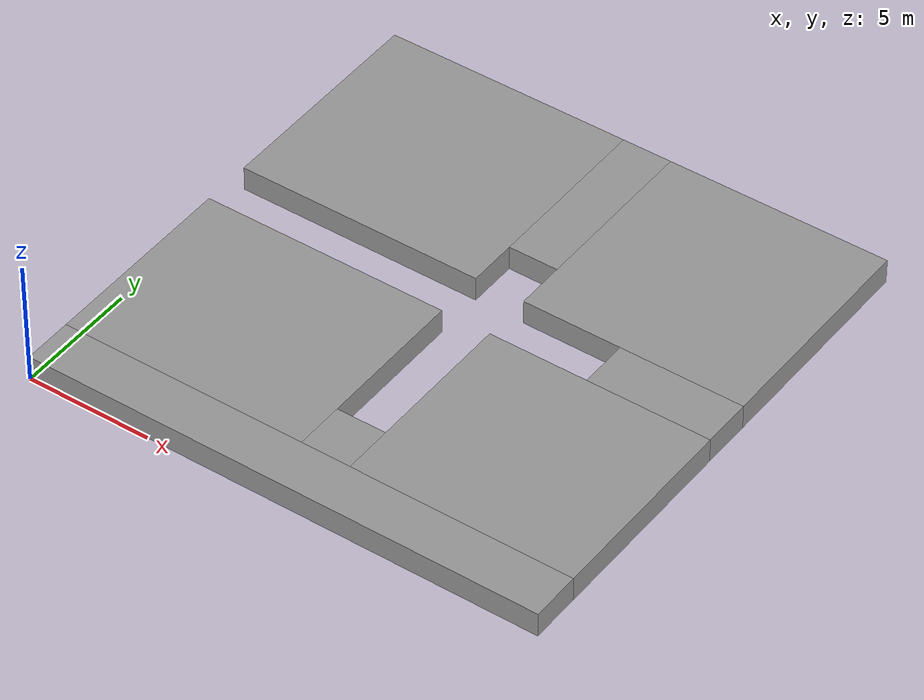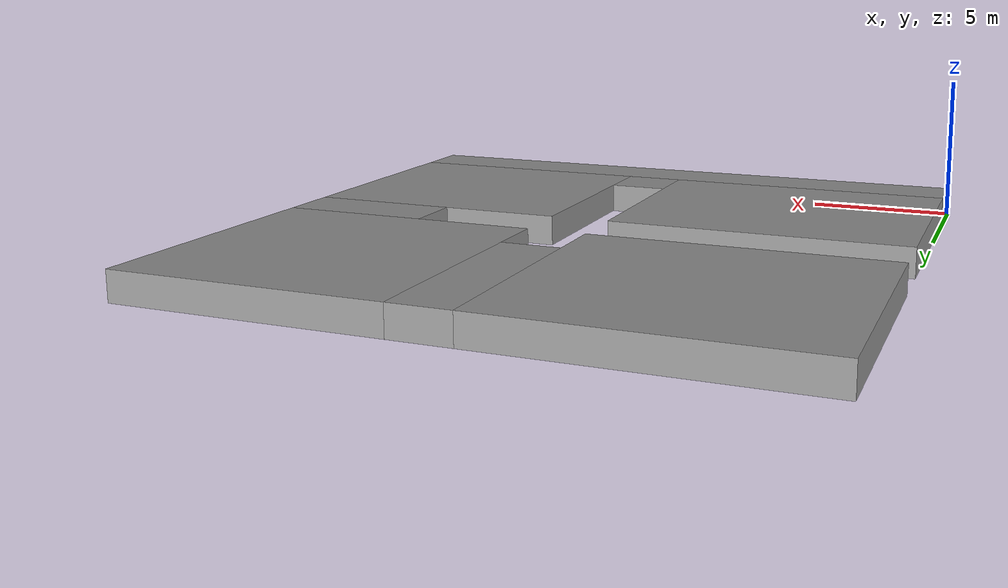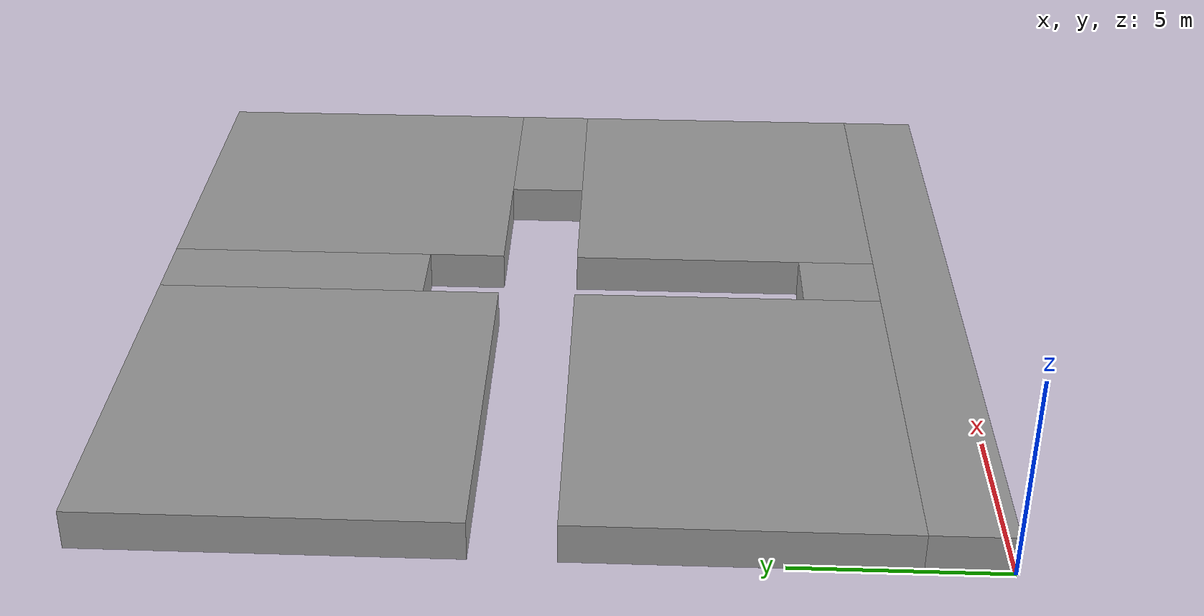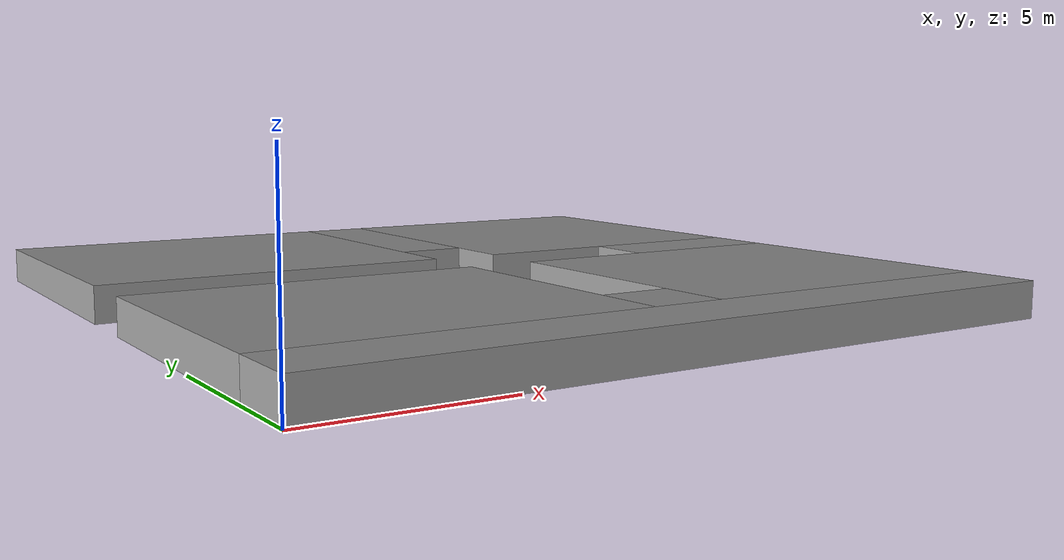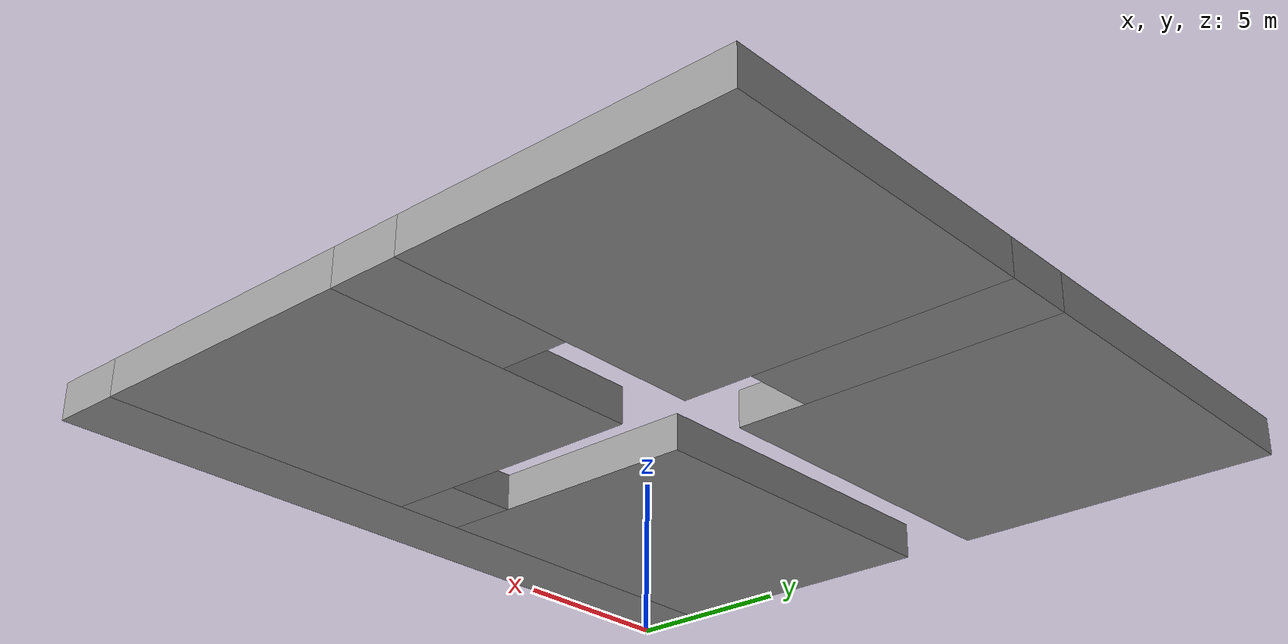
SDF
<?xml version='1.0'?>
<sdf version='1.6'>
<model name='ImageMaze'>
<pose frame=''>0 0 0 0 -0 0</pose>
<link name='WallLink'>
<collision name='Wall_10.5_1.0_Collision'>
	<geometry>
	<box>
 <size>21.000000 2.000000 1.000000</size>
 </box>
</geometry>
<pose frame=''>10.500000 1.000000 0.500000 0 0 0</pose>
</collision>
	<visual name='Wall_10.5_1.0_Visual'>
<pose frame=''>10.500000 1.000000 0.500000 0 0 0</pose>
	<geometry>
<box>
<size>21.000000 2.000000 1.000000</size>
</box>
</geometry>
<material>
<script>
<uri>file://media/materials/scripts/gazebo.material</uri>
<name>Gazebo/Grey</name>
</script>
<ambient>1 1 1 1</ambient>
</material>
</visual>
<collision name='Wall_5.0_6.0_Collision'>
	<geometry>
	<box>
 <size>10.000000 8.000000 1.000000</size>
 </box>
</geometry>
<pose frame=''>5.000000 6.000000 0.500000 0 0 0</pose>
</collision>
	<visual name='Wall_5.0_6.0_Visual'>
<pose frame=''>5.000000 6.000000 0.500000 0 0 0</pose>
	<geometry>
<box>
<size>10.000000 8.000000 1.000000</size>
</box>
</geometry>
<material>
<script>
<uri>file://media/materials/scripts/gazebo.material</uri>
<name>Gazebo/Grey</name>
</script>
<ambient>1 1 1 1</ambient>
</material>
</visual>
<collision name='Wall_11.0_3.0_Collision'>
	<geometry>
	<box>
 <size>2.000000 2.000000 1.000000</size>
 </box>
</geometry>
<pose frame=''>11.000000 3.000000 0.500000 0 0 0</pose>
</collision>
	<visual name='Wall_11.0_3.0_Visual'>
<pose frame=''>11.000000 3.000000 0.500000 0 0 0</pose>
	<geometry>
<box>
<size>2.000000 2.000000 1.000000</size>
</box>
</geometry>
<material>
<script>
<uri>file://media/materials/scripts/gazebo.material</uri>
<name>Gazebo/Grey</name>
</script>
<ambient>1 1 1 1</ambient>
</material>
</visual>
<collision name='Wall_16.5_6.0_Collision'>
	<geometry>
	<box>
 <size>9.000000 8.000000 1.000000</size>
 </box>
</geometry>
<pose frame=''>16.500000 6.000000 0.500000 0 0 0</pose>
</collision>
	<visual name='Wall_16.5_6.0_Visual'>
<pose frame=''>16.500000 6.000000 0.500000 0 0 0</pose>
	<geometry>
<box>
<size>9.000000 8.000000 1.000000</size>
</box>
</geometry>
<material>
<script>
<uri>file://media/materials/scripts/gazebo.material</uri>
<name>Gazebo/Grey</name>
</script>
<ambient>1 1 1 1</ambient>
</material>
</visual>
<collision name='Wall_5.0_16.5_Collision'>
	<geometry>
	<box>
 <size>10.000000 9.000000 1.000000</size>
 </box>
</geometry>
<pose frame=''>5.000000 16.500000 0.500000 0 0 0</pose>
</collision>
	<visual name='Wall_5.0_16.5_Visual'>
<pose frame=''>5.000000 16.500000 0.500000 0 0 0</pose>
	<geometry>
<box>
<size>10.000000 9.000000 1.000000</size>
</box>
</geometry>
<material>
<script>
<uri>file://media/materials/scripts/gazebo.material</uri>
<name>Gazebo/Grey</name>
</script>
<ambient>1 1 1 1</ambient>
</material>
</visual>
<collision name='Wall_11.0_17.5_Collision'>
	<geometry>
	<box>
 <size>2.000000 7.000000 1.000000</size>
 </box>
</geometry>
<pose frame=''>11.000000 17.500000 0.500000 0 0 0</pose>
</collision>
	<visual name='Wall_11.0_17.5_Visual'>
<pose frame=''>11.000000 17.500000 0.500000 0 0 0</pose>
	<geometry>
<box>
<size>2.000000 7.000000 1.000000</size>
</box>
</geometry>
<material>
<script>
<uri>file://media/materials/scripts/gazebo.material</uri>
<name>Gazebo/Grey</name>
</script>
<ambient>1 1 1 1</ambient>
</material>
</visual>
<collision name='Wall_16.5_16.5_Collision'>
	<geometry>
	<box>
 <size>9.000000 9.000000 1.000000</size>
 </box>
</geometry>
<pose frame=''>16.500000 16.500000 0.500000 0 0 0</pose>
</collision>
	<visual name='Wall_16.5_16.5_Visual'>
<pose frame=''>16.500000 16.500000 0.500000 0 0 0</pose>
	<geometry>
<box>
<size>9.000000 9.000000 1.000000</size>
</box>
</geometry>
<material>
<script>
<uri>file://media/materials/scripts/gazebo.material</uri>
<name>Gazebo/Grey</name>
</script>
<ambient>1 1 1 1</ambient>
</material>
</visual>
<collision name='Wall_18.5_11.0_Collision'>
	<geometry>
	<box>
 <size>5.000000 2.000000 1.000000</size>
 </box>
</geometry>
<pose frame=''>18.500000 11.000000 0.500000 0 0 0</pose>
</collision>
	<visual name='Wall_18.5_11.0_Visual'>
<pose frame=''>18.500000 11.000000 0.500000 0 0 0</pose>
	<geometry>
<box>
<size>5.000000 2.000000 1.000000</size>
</box>
</geometry>
<material>
<script>
<uri>file://media/materials/scripts/gazebo.material</uri>
<name>Gazebo/Grey</name>
</script>
<ambient>1 1 1 1</ambient>
</material>
</visual>

</link><static>1</static>
</model>
</sdf>
